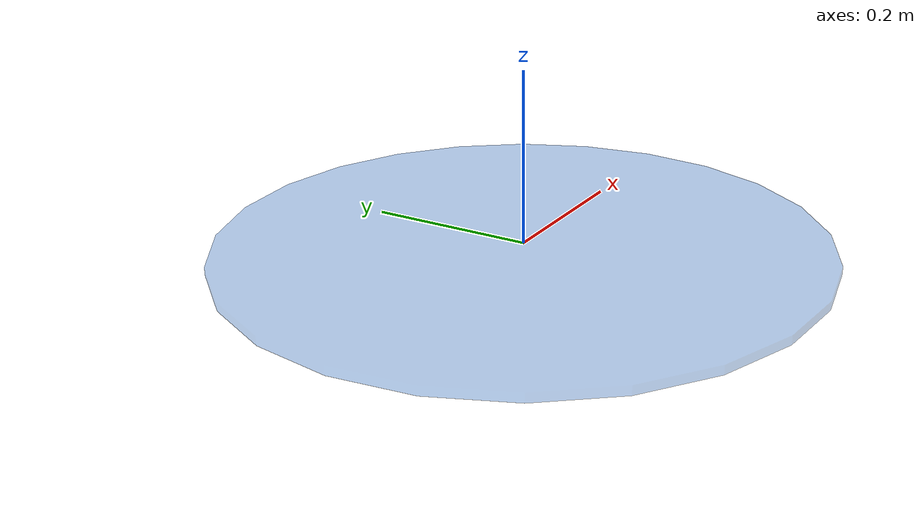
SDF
<?xml version="1.0"?>
<sdf version="1.7">
  <model name="water_puddle">
    <static>true</static>
    <link name="link">
      <pose>0 0 0.005 0 0 0</pose>
      <collision name="collision">
        <geometry>
          <cylinder>
            <radius>0.35</radius>
            <length>0.01</length>
          </cylinder>
        </geometry>
      </collision>
      <visual name="visual">
        <geometry>
          <cylinder>
            <radius>0.35</radius>
            <length>0.01</length>
          </cylinder>
        </geometry>
        <material>
          <ambient>0.1 0.4 0.8 0.35</ambient>
          <diffuse>0.1 0.4 0.8 0.35</diffuse>
          <specular>0.2 0.4 0.6 0.2</specular>
        </material>
      </visual>
    </link>
  </model>
</sdf>
